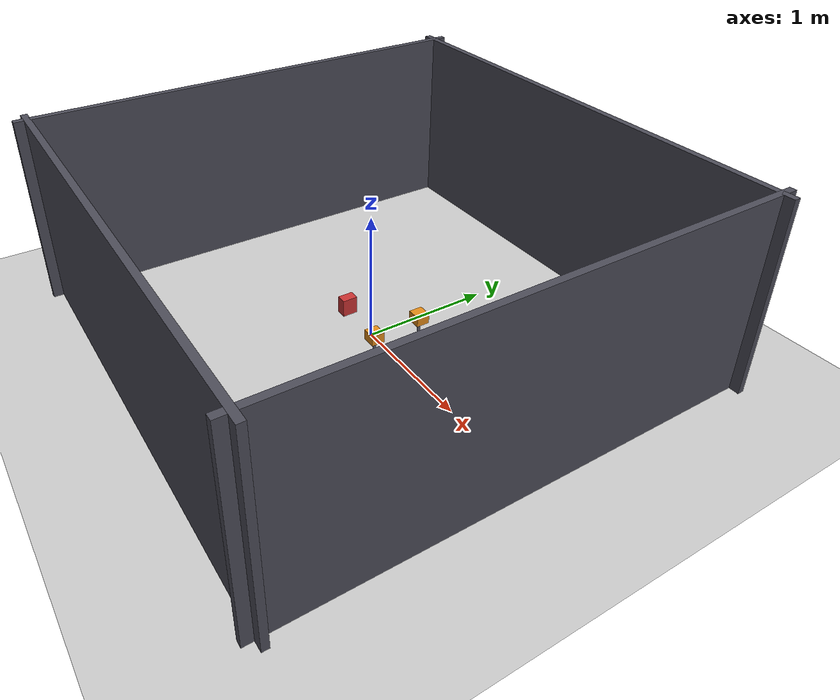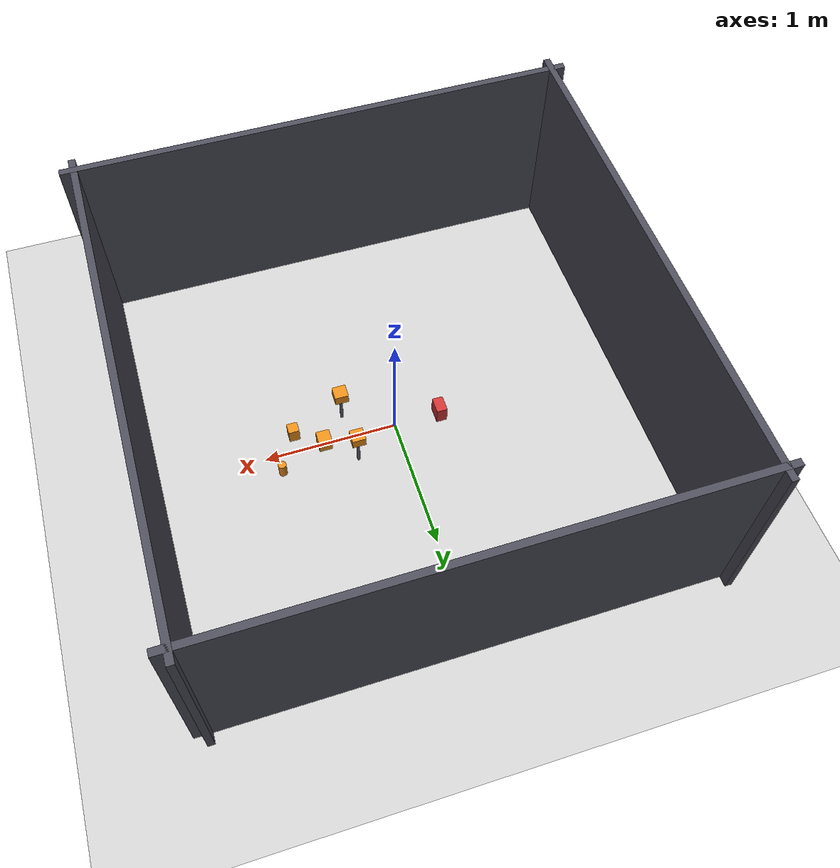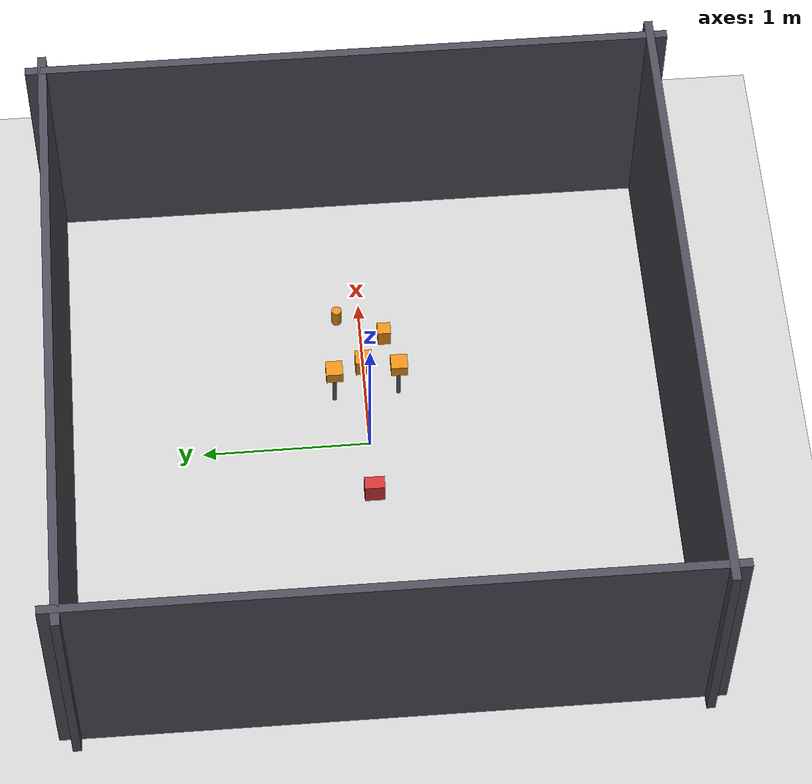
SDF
<?xml version="1.0"?>
<sdf version="1.6">
  <world name="air26">

    <include>
      <uri>model://sun</uri>
    </include>
    <include>
      <uri>model://ground_plane</uri>
    </include>

    <physics type="ode">
      <max_step_size>0.002</max_step_size>
      <real_time_update_rate>500</real_time_update_rate>
    </physics>

    <model name="arena_walls">
      <static>true</static>
      <link name="link">
        <collision name="n"><pose>0 1.8 0.75 0 0 0</pose>
          <geometry><box><size>3.8 0.05 1.5</size></box></geometry></collision>
        <visual name="nv"><pose>0 1.8 0.75 0 0 0</pose>
          <geometry><box><size>3.8 0.05 1.5</size></box></geometry>
          <material><ambient>0.3 0.3 0.35 1</ambient><diffuse>0.3 0.3 0.35 1</diffuse></material></visual>
        <collision name="s"><pose>0 -1.8 0.75 0 0 0</pose>
          <geometry><box><size>3.8 0.05 1.5</size></box></geometry></collision>
        <visual name="sv"><pose>0 -1.8 0.75 0 0 0</pose>
          <geometry><box><size>3.8 0.05 1.5</size></box></geometry>
          <material><ambient>0.3 0.3 0.35 1</ambient><diffuse>0.3 0.3 0.35 1</diffuse></material></visual>
        <collision name="e"><pose>1.8 0 0.75 0 0 0</pose>
          <geometry><box><size>0.05 3.8 1.5</size></box></geometry></collision>
        <visual name="ev"><pose>1.8 0 0.75 0 0 0</pose>
          <geometry><box><size>0.05 3.8 1.5</size></box></geometry>
          <material><ambient>0.3 0.3 0.35 1</ambient><diffuse>0.3 0.3 0.35 1</diffuse></material></visual>
        <collision name="w"><pose>-1.8 0 0.75 0 0 0</pose>
          <geometry><box><size>0.05 3.8 1.5</size></box></geometry></collision>
        <visual name="wv"><pose>-1.8 0 0.75 0 0 0</pose>
          <geometry><box><size>0.05 3.8 1.5</size></box></geometry>
          <material><ambient>0.3 0.3 0.35 1</ambient><diffuse>0.3 0.3 0.35 1</diffuse></material></visual>
      </link>
    </model>

    <!-- reusable light-box macro-by-hand: ground obstacles -->
    <model name="obs_ground_1">
      <pose>0.55 0.0 0.06 0 0 0</pose>
      <link name="link">
        <inertial><mass>0.05</mass>
          <inertia><ixx>1e-4</ixx><iyy>1e-4</iyy><izz>1e-4</izz>
                   <ixy>0</ixy><ixz>0</ixz><iyz>0</iyz></inertia>
        </inertial>
        <collision name="c"><geometry><box><size>0.10 0.10 0.12</size></box></geometry>
          <surface><friction><ode><mu>0.6</mu><mu2>0.6</mu2></ode></friction></surface>
        </collision>
        <visual name="v"><geometry><box><size>0.10 0.10 0.12</size></box></geometry>
          <material><ambient>0.9 0.55 0.1 1</ambient><diffuse>0.9 0.55 0.1 1</diffuse></material>
        </visual>
      </link>
    </model>

    <model name="obs_ground_2">
      <pose>0.75 -0.14 0.06 0 0 0</pose>
      <link name="link">
        <inertial><mass>0.04</mass>
          <inertia><ixx>1e-4</ixx><iyy>1e-4</iyy><izz>1e-4</izz>
                   <ixy>0</ixy><ixz>0</ixz><iyz>0</iyz></inertia>
        </inertial>
        <collision name="c"><geometry><box><size>0.08 0.08 0.12</size></box></geometry>
          <surface><friction><ode><mu>0.6</mu><mu2>0.6</mu2></ode></friction></surface>
        </collision>
        <visual name="v"><geometry><box><size>0.08 0.08 0.12</size></box></geometry>
          <material><ambient>0.9 0.55 0.1 1</ambient><diffuse>0.9 0.55 0.1 1</diffuse></material>
        </visual>
      </link>
    </model>

    <model name="obs_ground_3">
      <pose>0.90 0.14 0.06 0 0 0</pose>
      <link name="link">
        <inertial><mass>0.04</mass>
          <inertia><ixx>1e-4</ixx><iyy>1e-4</iyy><izz>1e-4</izz>
                   <ixy>0</ixy><ixz>0</ixz><iyz>0</iyz></inertia>
        </inertial>
        <collision name="c"><geometry><cylinder><radius>0.03</radius><length>0.12</length></cylinder></geometry>
          <surface><friction><ode><mu>0.6</mu><mu2>0.6</mu2></ode></friction></surface>
        </collision>
        <visual name="v"><geometry><cylinder><radius>0.03</radius><length>0.12</length></cylinder></geometry>
          <material><ambient>0.9 0.55 0.1 1</ambient><diffuse>0.9 0.55 0.1 1</diffuse></material>
        </visual>
      </link>
    </model>

    <!-- rear obstacle (backup demo) -->
    <model name="obs_rear">
      <pose>-0.35 0.0 0.07 0 0 0</pose>
      <link name="link">
        <inertial><mass>0.06</mass>
          <inertia><ixx>1e-4</ixx><iyy>1e-4</iyy><izz>1e-4</izz>
                   <ixy>0</ixy><ixz>0</ixz><iyz>0</iyz></inertia>
        </inertial>
        <collision name="c"><geometry><box><size>0.08 0.12 0.14</size></box></geometry>
          <surface><friction><ode><mu>0.6</mu><mu2>0.6</mu2></ode></friction></surface>
        </collision>
        <visual name="v"><geometry><box><size>0.08 0.12 0.14</size></box></geometry>
          <material><ambient>0.8 0.2 0.2 1</ambient><diffuse>0.8 0.2 0.2 1</diffuse></material>
        </visual>
      </link>
    </model>

    <!-- canopy: light boxes resting on thin STATIC posts, on the up-angled
         canopy sensor rays (and reachable by the canopy swipe) -->
    <model name="post_left">
      <static>true</static>
      <pose>0.34 0.19 0.13 0 0 0</pose>
      <link name="link">
        <collision name="c"><geometry><cylinder><radius>0.012</radius><length>0.26</length></cylinder></geometry></collision>
        <visual name="v"><geometry><cylinder><radius>0.012</radius><length>0.26</length></cylinder></geometry>
          <material><ambient>0.35 0.35 0.4 1</ambient><diffuse>0.35 0.35 0.4 1</diffuse></material>
        </visual>
      </link>
    </model>
    <model name="obs_canopy_1">
      <pose>0.34 0.19 0.30 0 0 0</pose>
      <link name="link">
        <inertial><mass>0.03</mass>
          <inertia><ixx>5e-5</ixx><iyy>5e-5</iyy><izz>5e-5</izz>
                   <ixy>0</ixy><ixz>0</ixz><iyz>0</iyz></inertia>
        </inertial>
        <collision name="c"><geometry><box><size>0.10 0.10 0.08</size></box></geometry></collision>
        <visual name="v"><geometry><box><size>0.10 0.10 0.08</size></box></geometry>
          <material><ambient>0.9 0.55 0.1 1</ambient><diffuse>0.9 0.55 0.1 1</diffuse></material>
        </visual>
      </link>
    </model>

    <model name="post_right">
      <static>true</static>
      <pose>0.36 -0.20 0.13 0 0 0</pose>
      <link name="link">
        <collision name="c"><geometry><cylinder><radius>0.012</radius><length>0.26</length></cylinder></geometry></collision>
        <visual name="v"><geometry><cylinder><radius>0.012</radius><length>0.26</length></cylinder></geometry>
          <material><ambient>0.35 0.35 0.4 1</ambient><diffuse>0.35 0.35 0.4 1</diffuse></material>
        </visual>
      </link>
    </model>
    <model name="obs_canopy_2">
      <pose>0.36 -0.20 0.30 0 0 0</pose>
      <link name="link">
        <inertial><mass>0.03</mass>
          <inertia><ixx>5e-5</ixx><iyy>5e-5</iyy><izz>5e-5</izz>
                   <ixy>0</ixy><ixz>0</ixz><iyz>0</iyz></inertia>
        </inertial>
        <collision name="c"><geometry><box><size>0.10 0.10 0.08</size></box></geometry></collision>
        <visual name="v"><geometry><box><size>0.10 0.10 0.08</size></box></geometry>
          <material><ambient>0.9 0.55 0.1 1</ambient><diffuse>0.9 0.55 0.1 1</diffuse></material>
        </visual>
      </link>
    </model>

  </world>
</sdf>
